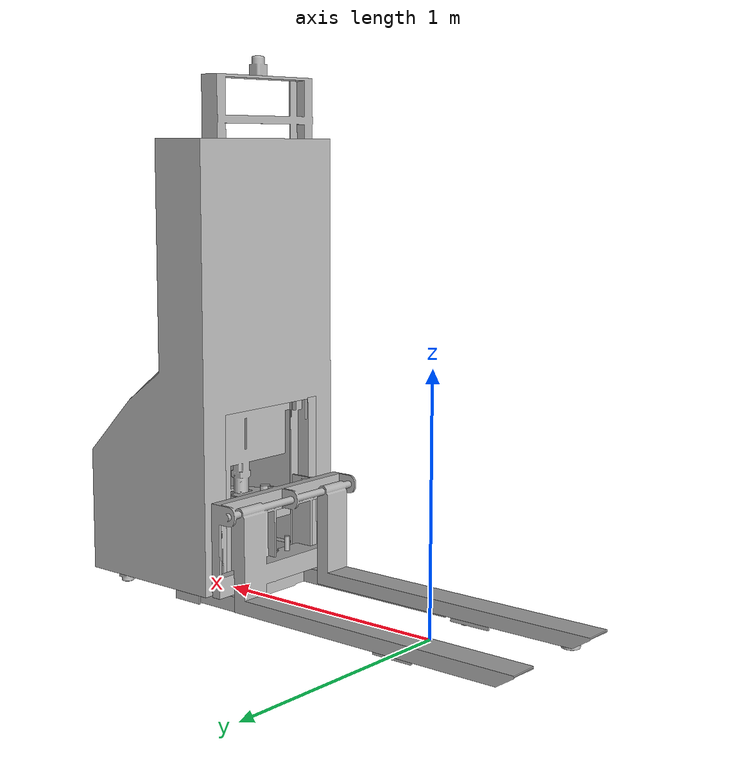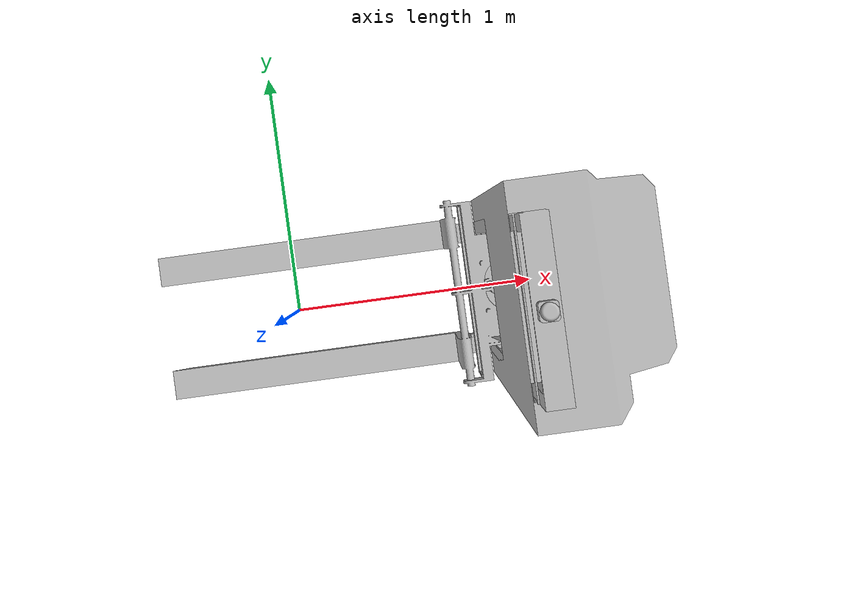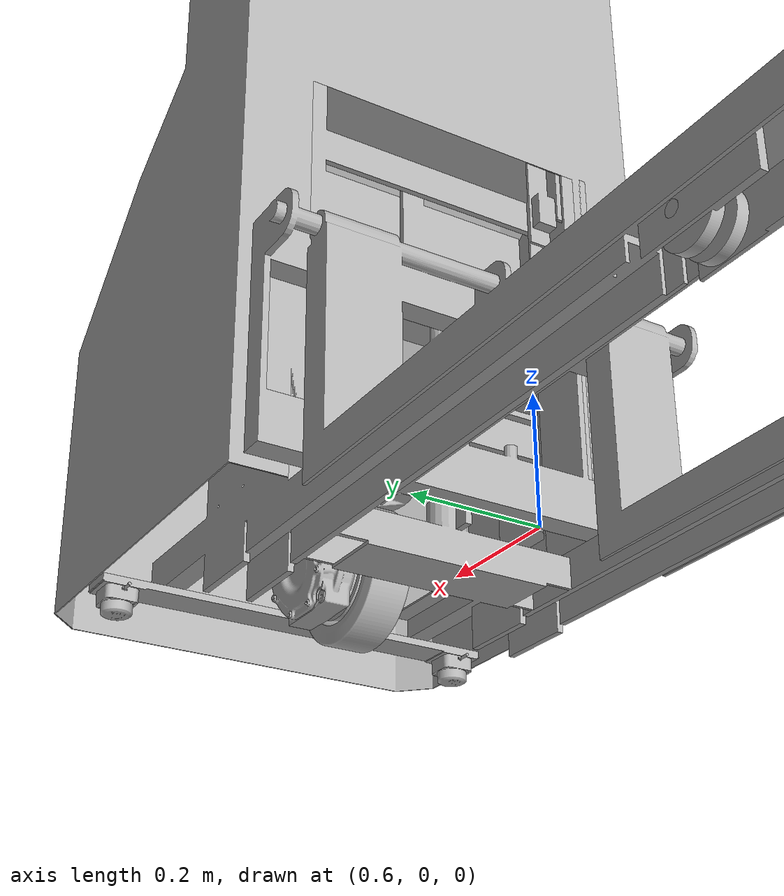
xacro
<?xml version="1.0" ?>
<robot name="boa_new_urdf" xmlns:xacro="http://www.ros.org/wiki/xacro">

<xacro:include filename="$(find boa_new_urdf_description)/urdf/materials.xacro" />
<xacro:include filename="$(find boa_new_urdf_description)/urdf/boa_new_urdf.trans" />
<xacro:include filename="$(find boa_new_urdf_description)/urdf/boa_new_urdf.gazebo" />

<link name="base_footprint"/>

<joint name="base_footprint_joint" type="fixed">
  <origin xyz="0 0 0" rpy="0 0 0"/>
  <parent link="base_footprint"/>
  <child link="base_link"/>
</joint>

<link name="base_link">
  <inertial>
    <origin xyz="0.945398072688781 -0.001011453583043792 0.1" rpy="0 0 0"/>
    <mass value="60.0"/>
    <inertia ixx="15.121" iyy="14.499" izz="3.110" ixy="0.007" iyz="-0.041" ixz="-1.011"/>
  </inertial>
  <visual>
    <origin xyz="0 0 0" rpy="0 0 0"/>
    <geometry>
      <mesh filename="file://$(find boa_new_urdf_description)/meshes/base_link.stl" scale="0.001 0.001 0.001"/>
    </geometry>
    <material name="silver"/>
  </visual>
  <collision>
    <origin xyz="0 0 0" rpy="0 0 0"/>
    <geometry>
      <mesh filename="file://$(find boa_new_urdf_description)/meshes/base_link.stl" scale="0.001 0.001 0.001"/>
    </geometry>
  </collision>
</link>

<link name="right_caster_1">
  <inertial>
    <origin xyz="-6.465938895416911e-14 0.039999999999999314 9.71445146547012e-17" rpy="0 0 0"/>
    <mass value="1.3070596235260359"/>
    <inertia ixx="0.000852" iyy="0.000953" izz="0.000852" ixy="0.0" iyz="-0.0" ixz="-0.0"/>
  </inertial>
  <visual>
    <origin xyz="-0.0 0.275 -0.04" rpy="0 0 0"/>
    <geometry>
      <mesh filename="file://$(find boa_new_urdf_description)/meshes/right_caster_1.stl" scale="0.001 0.001 0.001"/>
    </geometry>
    <material name="silver"/>
  </visual>
  <collision>
    <origin xyz="-0.0 0.275 -0.04" rpy="0 0 0"/>
    <geometry>
      <mesh filename="file://$(find boa_new_urdf_description)/meshes/right_caster_1.stl" scale="0.001 0.001 0.001"/>
    </geometry>
  </collision>
</link>

<link name="left_caster_1">
  <inertial>
    <origin xyz="-6.3948846218409e-14 -0.039999999999997454 2.2898349882893854e-16" rpy="0 0 0"/>
    <mass value="1.3070596235260348"/>
    <inertia ixx="0.000852" iyy="0.000953" izz="0.000852" ixy="0.0" iyz="0.0" ixz="-0.0"/>
  </inertial>
  <visual>
    <origin xyz="-0.0 -0.275 -0.04" rpy="0 0 0"/>
    <geometry>
      <mesh filename="file://$(find boa_new_urdf_description)/meshes/left_caster_1.stl" scale="0.001 0.001 0.001"/>
    </geometry>
    <material name="silver"/>
  </visual>
  <collision>
    <origin xyz="-0.0 -0.275 -0.04" rpy="0 0 0"/>
    <geometry>
      <mesh filename="file://$(find boa_new_urdf_description)/meshes/left_caster_1.stl" scale="0.001 0.001 0.001"/>
    </geometry>
  </collision>
</link>

<link name="drive_motor_1">
  <inertial>
    <origin xyz="-0.012700 0.0 0.000004" rpy="0 0 0"/>
    <mass value="17.21864059844125"/>
    <inertia ixx="0.124174" iyy="0.072747" izz="0.072745" ixy="-0.0" iyz="-0.0" ixz="-3e-06"/>
  </inertial>
  <visual>
    <origin xyz="0.0 -1.1014 -0.10899" rpy="0 0 1.5707963"/>
    <geometry>
      <mesh filename="file://$(find boa_new_urdf_description)/meshes/drive_motor_1.stl" scale="0.001 0.001 0.001"/>
    </geometry>
    <material name="silver"/>
  </visual>
  <collision>
    <!-- Cylinder collision for proper rolling contact in Gazebo -->
    <!-- Wheel rolls in X direction: cylinder axis = Y, rotate Z→Y (90° around X) -->
    <origin xyz="0 0 0" rpy="1.5707963 0 0"/>
    <geometry>
      <cylinder radius="0.109" length="0.145"/>
    </geometry>
  </collision>
</link>

<link name="direction_motor_1">
  <inertial>
    <origin xyz="0.071800 -0.000200 -0.092100" rpy="0 0 0"/>
    <mass value="20.417319679069678"/>
    <inertia ixx="0.182357" iyy="0.193956" izz="0.141973" ixy="-0.000532" iyz="0.001583" ixz="0.045478"/>
  </inertial>
  <visual>
    <origin xyz="-1.0957 0.0 -0.3345" rpy="0 0 0"/>
    <geometry>
      <mesh filename="file://$(find boa_new_urdf_description)/meshes/direction_motor_1.stl" scale="0.001 0.001 0.001"/>
    </geometry>
    <material name="silver"/>
  </visual>
  <collision>
    <origin xyz="-1.0957 0.0 -0.3345" rpy="0 0 0"/>
    <geometry>
      <mesh filename="file://$(find boa_new_urdf_description)/meshes/direction_motor_1.stl" scale="0.001 0.001 0.001"/>
    </geometry>
  </collision>
</link>

<link name="lift_1">
  <inertial>
    <origin xyz="-0.2463841438938288 4.17434188371459e-15 0.15826317440554472" rpy="0 0 0"/>
    <mass value="84.07963834081151"/>
    <inertia ixx="5.78863" iyy="11.805331" izz="13.959058" ixy="-0.0" iyz="0.0" ixz="-2.174236"/>
  </inertial>
  <visual>
    <origin xyz="-0.82 -0.0 -0.07" rpy="0 0 0"/>
    <geometry>
      <mesh filename="file://$(find boa_new_urdf_description)/meshes/lift_1.stl" scale="0.001 0.001 0.001"/>
    </geometry>
    <material name="silver"/>
  </visual>
  <collision>
    <origin xyz="-0.82 -0.0 -0.07" rpy="0 0 0"/>
    <geometry>
      <mesh filename="file://$(find boa_new_urdf_description)/meshes/lift_1.stl" scale="0.001 0.001 0.001"/>
    </geometry>
  </collision>
</link>

<link name="lidar_fork_1">
  <inertial>
    <origin xyz="0.0003185696935690818 2.8965477646136772e-06 -0.014854120337495023" rpy="0 0 0"/>
    <mass value="0.2706325212274874"/>
    <inertia ixx="0.000192" iyy="0.000193" izz="0.000297" ixy="-0.0" iyz="0.0" ixz="-1e-06"/>
  </inertial>
  <visual>
    <origin xyz="0.45 0.235 -0.0685" rpy="0 0 0"/>
    <geometry>
      <mesh filename="file://$(find boa_new_urdf_description)/meshes/lidar_fork_1.stl" scale="0.001 0.001 0.001"/>
    </geometry>
    <material name="silver"/>
  </visual>
  <collision>
    <origin xyz="0.45 0.235 -0.0685" rpy="0 0 0"/>
    <geometry>
      <mesh filename="file://$(find boa_new_urdf_description)/meshes/lidar_fork_1.stl" scale="0.001 0.001 0.001"/>
    </geometry>
  </collision>
</link>

<link name="lidar_left_1">
  <inertial>
    <origin xyz="-9.36104279709582e-05 -0.0006445792369226822 -0.013527945325587445" rpy="0 0 0"/>
    <mass value="0.2591621344886043"/>
    <inertia ixx="0.000118" iyy="0.000112" izz="0.000163" ixy="-0.0" iyz="2e-06" ixz="0.0"/>
  </inertial>
  <visual>
    <origin xyz="-1.29 -0.313 -0.086" rpy="0 0 0"/>
    <geometry>
      <mesh filename="file://$(find boa_new_urdf_description)/meshes/lidar_left_1.stl" scale="0.001 0.001 0.001"/>
    </geometry>
    <material name="silver"/>
  </visual>
  <collision>
    <origin xyz="-1.29 -0.313 -0.086" rpy="0 0 0"/>
    <geometry>
      <mesh filename="file://$(find boa_new_urdf_description)/meshes/lidar_left_1.stl" scale="0.001 0.001 0.001"/>
    </geometry>
  </collision>
</link>

<link name="lidar_right_1">
  <inertial>
    <origin xyz="-9.361045077138641e-05 0.0006445790889220704 -0.01352794539440104" rpy="0 0 0"/>
    <mass value="0.25916213258976506"/>
    <inertia ixx="0.000118" iyy="0.000112" izz="0.000163" ixy="0.0" iyz="-2e-06" ixz="0.0"/>
  </inertial>
  <visual>
    <origin xyz="-1.29 0.313 -0.086" rpy="0 0 0"/>
    <geometry>
      <mesh filename="file://$(find boa_new_urdf_description)/meshes/lidar_right_1.stl" scale="0.001 0.001 0.001"/>
    </geometry>
    <material name="silver"/>
  </visual>
  <collision>
    <origin xyz="-1.29 0.313 -0.086" rpy="0 0 0"/>
    <geometry>
      <mesh filename="file://$(find boa_new_urdf_description)/meshes/lidar_right_1.stl" scale="0.001 0.001 0.001"/>
    </geometry>
  </collision>
</link>

<link name="lidar_top">
  <inertial>
    <origin xyz="-4.3560027251920985e-06 4.649845288881102e-06 0.03323324367886471" rpy="0 0 0"/>
    <mass value="1.47998358904255"/>
    <inertia ixx="0.000945" iyy="0.000945" izz="0.000637" ixy="-0.0" iyz="-0.0" ixz="-0.0"/>
  </inertial>
  <visual>
    <origin xyz="-0.84 2.6e-05 -2.051002" rpy="0 0 0"/>
    <geometry>
      <mesh filename="file://$(find boa_new_urdf_description)/meshes/slamware_1.stl" scale="0.001 0.001 0.001"/>
    </geometry>
    <material name="silver"/>
  </visual>
  <collision>
    <origin xyz="-0.84 2.6e-05 -2.051002" rpy="0 0 0"/>
    <geometry>
      <mesh filename="file://$(find boa_new_urdf_description)/meshes/slamware_1.stl" scale="0.001 0.001 0.001"/>
    </geometry>
  </collision>
</link>

<link name="case_1">
  <inertial>
    <origin xyz="0.826289808277356 -8.38019998043213e-05 -1.0857649471938513" rpy="0 0 0"/>
    <mass value="64.3759577604728"/>
    <inertia ixx="21.402375" iyy="19.591691" izz="8.035831" ixy="-0.001323" iyz="-0.002828" ixz="3.543087"/>
  </inertial>
  <visual>
    <origin xyz="-0.21 -0.0 -2.04" rpy="0 0 0"/>
    <geometry>
      <mesh filename="file://$(find boa_new_urdf_description)/meshes/case_1.stl" scale="0.001 0.001 0.001"/>
    </geometry>
    <material name="silver"/>
  </visual>
  <collision>
    <origin xyz="-0.21 -0.0 -2.04" rpy="0 0 0"/>
    <geometry>
      <mesh filename="file://$(find boa_new_urdf_description)/meshes/case_1.stl" scale="0.001 0.001 0.001"/>
    </geometry>
  </collision>
</link>

<joint name="right_caster_joint" type="continuous">
  <origin xyz="0.0 -0.275 0.04" rpy="0 0 0"/>
  <parent link="base_link"/>
  <child link="right_caster_1"/>
  <axis xyz="0.0 1.0 0.0"/>
  <dynamics damping="1.5" friction="0.5"/>
</joint>

<joint name="left_caster_joint" type="continuous">
  <origin xyz="0.0 0.275 0.04" rpy="0 0 0"/>
  <parent link="base_link"/>
  <child link="left_caster_1"/>
  <axis xyz="-0.0 -1.0 0.0"/>
  <dynamics damping="1.5" friction="0.5"/>
</joint>

<joint name="drive_motor_joint" type="continuous">
  <origin xyz="0.0 0.0 -0.2255" rpy="0 0 -1.5707963"/>
  <parent link="direction_motor_1"/>
  <child link="drive_motor_1"/>
  <axis xyz="0.0 1.0 0.0"/>
  <dynamics damping="0.3" friction="0.0"/>
</joint>

<joint name="direction_motor_joint" type="revolute">
  <origin xyz="1.0957 0.0 0.3345" rpy="0 0 1.5707963"/>
  <parent link="base_link"/>
  <child link="direction_motor_1"/>
  <axis xyz="0.0 0.0 1.0"/>
  <limit lower="-1.5708" upper="1.5708" effort="300.0" velocity="0.8"/>
  <dynamics damping="5.0" friction="0.5"/>
</joint>

<joint name="lift_joint" type="prismatic">
  <origin xyz="0.82 0.0 0.07" rpy="0 0 0"/>
  <parent link="base_link"/>
  <child link="lift_1"/>
  <axis xyz="0.0 0.0 1.0"/>
  <limit lower="0.0" upper="1.5" effort="5000.0" velocity="0.2"/>
  <dynamics damping="500.0" friction="100.0"/>
</joint>

<joint name="lidar_fork_joint" type="fixed">
  <origin xyz="-0.45 -0.235 0.05" rpy="0 0 0"/>
  <parent link="base_link"/>
  <child link="lidar_fork_1"/>
</joint>

<joint name="lidar_left_joint" type="fixed">
  <origin xyz="1.29 0.313 0.086" rpy="0 0 -1.5707963"/>
  <parent link="base_link"/>
  <child link="lidar_left_1"/>
</joint>

<joint name="lidar_right_joint" type="fixed">
  <origin xyz="1.29 -0.313 0.086" rpy="0 0 1.5707963"/>
  <parent link="base_link"/>
  <child link="lidar_right_1"/>
</joint>

<joint name="slamware_joint" type="fixed">
  <origin xyz="0.84 -2.6e-05 2.051002" rpy="0 0 0"/>
  <parent link="base_link"/>
  <child link="lidar_top"/>
</joint>

<link name="imu_link">
  <inertial>
    <origin xyz="0 0 0" rpy="0 0 0"/>
    <mass value="0.001"/>
    <inertia ixx="1e-06" iyy="1e-06" izz="1e-06" ixy="0" iyz="0" ixz="0"/>
  </inertial>
</link>

<joint name="imu_joint" type="fixed">
  <!-- Same position as lidar_top -->
  <origin xyz="0.84 -2.6e-05 2.051002" rpy="0 0 0"/>
  <parent link="base_link"/>
  <child link="imu_link"/>
</joint>

<joint name="case_joint" type="fixed">
  <origin xyz="0.21 0.0 2.04" rpy="0 0 0"/>
  <parent link="base_link"/>
  <child link="case_1"/>
</joint>

<ros2_control name="boa_hardware" type="system">
  <hardware>
    <plugin>gz_ros2_control/GazeboSimSystem</plugin>
  </hardware>
  <joint name="direction_motor_joint">
    <command_interface name="position">
      <param name="min">-1.5708</param>
      <param name="max">1.5708</param>
    </command_interface>
    <state_interface name="position">
      <param name="initial_value">0.0</param>
    </state_interface>
    <state_interface name="velocity"/>
  </joint>
  <joint name="drive_motor_joint">
    <command_interface name="velocity">
      <param name="min">-5.0</param>
      <param name="max">5.0</param>
    </command_interface>
    <state_interface name="position"/>
    <state_interface name="velocity"/>
  </joint>
  <joint name="lift_joint">
    <command_interface name="position">
      <param name="min">0.0</param>
      <param name="max">1.5</param>
    </command_interface>
    <state_interface name="position">
      <param name="initial_value">0.0</param>
    </state_interface>
    <state_interface name="velocity"/>
  </joint>
</ros2_control>

</robot>

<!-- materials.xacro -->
<robot name="boa_new_urdf" xmlns:xacro="http://www.ros.org/wiki/xacro" >

<material name="silver">
  <color rgba="0.700 0.700 0.700 1.000"/>
</material>

</robot>

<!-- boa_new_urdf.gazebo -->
<robot name="boa_new_urdf" xmlns:xacro="http://www.ros.org/wiki/xacro" >

<xacro:property name="body_color" value="Gazebo/Silver" />

<gazebo>
  <plugin filename="gz_ros2_control-system"
          name="gz_ros2_control::GazeboSimROS2ControlPlugin">
    <parameters>$(find boa_new_urdf_description)/config/controllers.yaml</parameters>
  </plugin>
</gazebo>
<gazebo reference="base_link">
  <material>${body_color}</material>
  <mu1>0.2</mu1>
  <mu2>0.2</mu2>
  <self_collide>true</self_collide>
  <gravity>true</gravity>
</gazebo>

<gazebo reference="right_caster_1">
  <material>${body_color}</material>
  <mu1>0.01</mu1>
  <mu2>0.01</mu2>
  <self_collide>true</self_collide>
</gazebo>

<gazebo reference="left_caster_1">
  <material>${body_color}</material>
  <mu1>0.01</mu1>
  <mu2>0.01</mu2>
  <self_collide>true</self_collide>
</gazebo>

<gazebo reference="drive_motor_1">
  <material>${body_color}</material>
  <mu1>1.5</mu1>
  <mu2>0.1</mu2>
  <kp>100000.0</kp>
  <kd>10.0</kd>
  <minDepth>0.001</minDepth>
  <self_collide>true</self_collide>
</gazebo>

<gazebo reference="direction_motor_1">
  <material>${body_color}</material>
  <mu1>0.1</mu1>
  <mu2>0.1</mu2>
  <self_collide>true</self_collide>
</gazebo>

<gazebo reference="lift_1">
  <material>${body_color}</material>
  <mu1>0.2</mu1>
  <mu2>0.2</mu2>
  <self_collide>true</self_collide>
</gazebo>

<gazebo reference="lidar_fork_joint">
  <preserveFixedJoint>true</preserveFixedJoint>
</gazebo>
<gazebo reference="lidar_left_joint">
  <preserveFixedJoint>true</preserveFixedJoint>
</gazebo>
<gazebo reference="lidar_right_joint">
  <preserveFixedJoint>true</preserveFixedJoint>
</gazebo>
<gazebo reference="slamware_joint">
  <preserveFixedJoint>true</preserveFixedJoint>
</gazebo>
<gazebo reference="imu_joint">
  <preserveFixedJoint>true</preserveFixedJoint>
</gazebo>

<gazebo reference="lidar_fork_1">
  <material>${body_color}</material>
  <mu1>0.2</mu1>
  <mu2>0.2</mu2>
  <self_collide>true</self_collide>
  <sensor name="lidar_fork_sensor" type="gpu_lidar">
    <topic>/lidar_fork_1/scan</topic>
    <gz_frame_id>lidar_fork_1</gz_frame_id>
    <update_rate>15</update_rate>
    <lidar>
      <scan>
        <horizontal>
          <!-- 120° FOV, 0.5° resolution -->
          <samples>240</samples>
          <resolution>1</resolution>
          <min_angle>-3.14159265</min_angle>
          <max_angle>3.14159265</max_angle>
        </horizontal>
        <vertical>
          <samples>1</samples>
          <resolution>1</resolution>
          <min_angle>0.0</min_angle>
          <max_angle>0.0</max_angle>
        </vertical>
      </scan>
      <range>
        <min>0.1</min>
        <max>30.0</max>
        <resolution>0.01</resolution>
      </range>
      <noise>
        <type>gaussian</type>
        <mean>0.0</mean>
        <stddev>0.005</stddev>
      </noise>
    </lidar>
    <always_on>true</always_on>
    <enabled>true</enabled>
    <visualize>true</visualize>
  </sensor>
</gazebo>

<gazebo reference="lidar_left_1">
  <material>${body_color}</material>
  <mu1>0.2</mu1>
  <mu2>0.2</mu2>
  <self_collide>true</self_collide>
  <sensor name="lidar_left_sensor" type="gpu_lidar">
    <topic>/lidar_left_1/scan</topic>
    <gz_frame_id>lidar_left_1</gz_frame_id>
    <update_rate>15</update_rate>
    <lidar>
      <scan>
        <horizontal>
          <!-- 270° FOV, 0.5° resolution (SICK S300 style) -->
          <samples>540</samples>
          <resolution>1</resolution>
          <min_angle>-2.35619449</min_angle>
          <max_angle>2.35619449</max_angle>
        </horizontal>
        <vertical>
          <samples>1</samples>
          <resolution>1</resolution>
          <min_angle>0.0</min_angle>
          <max_angle>0.0</max_angle>
        </vertical>
      </scan>
      <range>
        <min>0.1</min>
        <max>30.0</max>
        <resolution>0.01</resolution>
      </range>
      <noise>
        <type>gaussian</type>
        <mean>0.0</mean>
        <stddev>0.005</stddev>
      </noise>
    </lidar>
    <always_on>true</always_on>
    <enabled>true</enabled>
    <visualize>true</visualize>
  </sensor>
</gazebo>

<gazebo reference="lidar_right_1">
  <material>${body_color}</material>
  <mu1>0.2</mu1>
  <mu2>0.2</mu2>
  <self_collide>true</self_collide>
  <sensor name="lidar_right_sensor" type="gpu_lidar">
    <topic>/lidar_right_1/scan</topic>
    <gz_frame_id>lidar_right_1</gz_frame_id>
    <update_rate>15</update_rate>
    <lidar>
      <scan>
        <horizontal>
          <!-- 270° FOV, 0.5° resolution (SICK S300 style) -->
          <samples>540</samples>
          <resolution>1</resolution>
          <min_angle>-2.35619449</min_angle>
          <max_angle>2.35619449</max_angle>
        </horizontal>
        <vertical>
          <samples>1</samples>
          <resolution>1</resolution>
          <min_angle>0.0</min_angle>
          <max_angle>0.0</max_angle>
        </vertical>
      </scan>
      <range>
        <min>0.1</min>
        <max>30.0</max>
        <resolution>0.01</resolution>
      </range>
      <noise>
        <type>gaussian</type>
        <mean>0.0</mean>
        <stddev>0.005</stddev>
      </noise>
    </lidar>
    <always_on>true</always_on>
    <enabled>true</enabled>
    <visualize>true</visualize>
  </sensor>
</gazebo>

<gazebo reference="lidar_top">
  <material>${body_color}</material>
  <mu1>0.2</mu1>
  <mu2>0.2</mu2>
  <self_collide>true</self_collide>
  <sensor name="lidar_top_sensor" type="gpu_lidar">
    <topic>/lidar_top/scan</topic>
    <gz_frame_id>lidar_top</gz_frame_id>
    <update_rate>10</update_rate>
    <lidar>
      <scan>
        <horizontal>
          <!-- Aurora SLAMTEC: 0.33° resolution ≈ 1080 samples/rev, 40m range -->
          <samples>1080</samples>
          <resolution>1</resolution>
          <min_angle>-3.14159265</min_angle>
          <max_angle>3.14159265</max_angle>
        </horizontal>
        <vertical>
          <samples>1</samples>
          <resolution>1</resolution>
          <min_angle>0</min_angle>
          <max_angle>0</max_angle>
        </vertical>
      </scan>
      <range>
        <min>0.3</min>
        <max>40.0</max>
        <resolution>0.01</resolution>
      </range>
      <noise>
        <type>gaussian</type>
        <mean>0.0</mean>
        <stddev>0.01</stddev>
      </noise>
    </lidar>
    <always_on>true</always_on>
    <enabled>true</enabled>
    <visualize>true</visualize>
  </sensor>
</gazebo>

<gazebo reference="imu_link">
  <sensor name="imu_sensor" type="imu">
    <topic>/imu/data</topic>
    <update_rate>100</update_rate>
    <imu>
      <angular_velocity>
        <x><noise type="gaussian"><mean>0.0</mean><stddev>0.0002</stddev></noise></x>
        <y><noise type="gaussian"><mean>0.0</mean><stddev>0.0002</stddev></noise></y>
        <z><noise type="gaussian"><mean>0.0</mean><stddev>0.0002</stddev></noise></z>
      </angular_velocity>
      <linear_acceleration>
        <x><noise type="gaussian"><mean>0.0</mean><stddev>0.017</stddev></noise></x>
        <y><noise type="gaussian"><mean>0.0</mean><stddev>0.017</stddev></noise></y>
        <z><noise type="gaussian"><mean>0.0</mean><stddev>0.017</stddev></noise></z>
      </linear_acceleration>
    </imu>
    <always_on>true</always_on>
    <enabled>true</enabled>
  </sensor>
</gazebo>

<gazebo reference="case_1">
  <material>${body_color}</material>
  <mu1>0.2</mu1>
  <mu2>0.2</mu2>
  <self_collide>true</self_collide>
</gazebo>

</robot>
